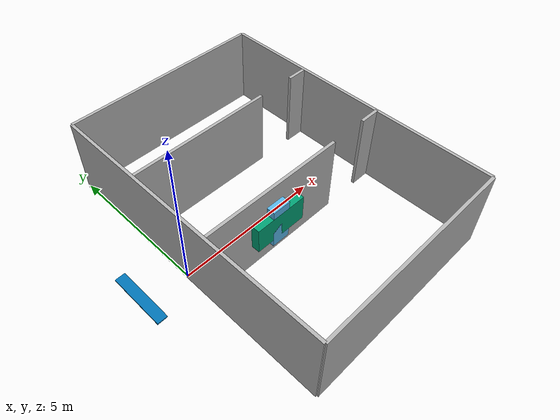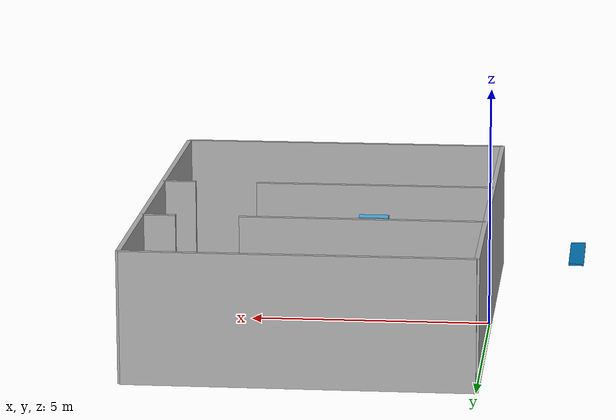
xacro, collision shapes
<?xml version="1.0"?>
<robot xmlns:xacro="http://www.ros.org/wiki/xacro" name="diag">

  <xacro:include filename="$(find lucrezio_gazebo_worlds)/urdf/common.xacro" />
  <xacro:include filename="$(find lucrezio_gazebo_worlds)/urdf/materials.urdf.xacro" />

  <!-- apartment -->
  <xacro:include filename="$(find lucrezio_gazebo_worlds)/urdf/diag/diag_walls.urdf.xacro" />

  <!-- kitchen -->
  <xacro:include filename="$(find lucrezio_gazebo_worlds)/urdf/diag/kitchen.urdf.xacro" />

  <!--Parameters-->
  <xacro:property name="dist_axis_x" value="1.969" />
  <xacro:property name="dist_axis_y" value="4.070" />

  <xacro:property name="size_total_x" value="8.0" />
  <xacro:property name="size_total_y" value="11.2" />

  <xacro:property name="size_a" value="10" />
  <xacro:property name="size_b" value="7" />
  <xacro:property name="size_c" value="5" />
  <xacro:property name="size_d" value="0.70" />

  <xacro:property name="wall_depth" value="0.1" />
  <xacro:property name="wall_height" value="2.7" />
  <xacro:property name="window_depth" value="0.15" />

  <xacro:property name="size_z_wall1" value="2.7" />
  <xacro:property name="size_z_wall2" value="2.7" />
  <xacro:property name="size_z_wall3" value="2.7" />

  <xacro:macro name="diag" params="name">

    <gazebo>
      <plugin name="environment_gazebo_ros_control" filename="libgazebo_ros_control.so">
        <robotNamespace>world</robotNamespace>
        <robotParam>/world_description</robotParam>
      </plugin>
    </gazebo>

    <link name="world"/>

    <xacro:diag_walls name="diag_walls">
    </xacro:diag_walls>

    <xacro:kitchen name="kitchen">
    </xacro:kitchen>

  </xacro:macro>

  <xacro:diag name="diag" />

</robot>

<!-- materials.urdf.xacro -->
<robot>

  <material name="DIAG/Blue">
    <color rgba="0.0 0.0 0.8 1.0"/>
  </material>

  <material name="DIAG/Green">
    <color rgba="0.0 0.8 0.0 1.0"/>
  </material>

  <material name="DIAG/Grey">
    <color rgba="0.7 0.7 0.7 1.0"/>
  </material>

  <material name="DIAG/Grey2">
    <color rgba="0.81 0.81 0.81 1.0"/>
  </material>

  <material name="DIAG/Red">
    <color rgba="0.8 0.0 0.0 1.0"/>
  </material>

  <material name="DIAG/White">
    <color rgba="1.0 1.0 1.0 1.0"/>
  </material>

  <material name="DIAG/Black">
    <color rgba="0.0 0.0 0.0 1.0"/>
  </material>

  <material name="DIAG/Transparent">
    <color rgba="0.81 0.81 0.81 0.0"/>
  </material>

  <material name="DIAG/LightBlue">
    <color rgba="0.624 0.698 0.858 1"/>
  </material>

</robot>

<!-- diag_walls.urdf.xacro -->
<robot xmlns:xacro="http://www.ros.org/wiki/xacro">

  <xacro:macro name="diag_walls" params="name">

  <!-- wall_00 -->
  <link name="wall_00">
    <xacro:box_inertial x="${wall_depth}" y="${size_a}" z="${wall_height}" mass="5.0">
      <origin xyz="0 0 0" rpy="0 0 0" />
    </xacro:box_inertial>
    <visual>
      <origin xyz="0 0 0" />
      <geometry>
        <box size="${wall_depth} ${size_a} ${wall_height}" />
      </geometry>
      <material name="DIAG/Grey"/>
    </visual>
    <collision>
      <origin xyz="0 0 0" />
      <geometry>
        <box size="${wall_depth} ${size_a} ${wall_height}" />
      </geometry>
    </collision>
  </link>

  <gazebo reference="wall_00">
    <material>wall_floor_05</material>
  </gazebo>

  <joint name="joint_wall_00" type="fixed">
    <origin xyz="0 0 ${wall_height/2}" rpy="0 0 0" />
    <parent link="world" />
    <child link="wall_00" />
  </joint>

  <!-- wall_01 -->
  <link name="wall_01">
    <xacro:box_inertial x="${wall_depth}" y="${size_b}" z="${wall_height}" mass="5.0">
      <origin xyz="0 0 0" rpy="0 0 0" />
    </xacro:box_inertial>
    <visual>
      <origin xyz="0 0 0" />
      <geometry>
        <box size="${wall_depth} ${size_b} ${wall_height}" />
      </geometry>
      <material name="DIAG/Grey"/>
    </visual>
    <collision>
      <origin xyz="0 0 0" />
      <geometry>
        <box size="${wall_depth} ${size_b} ${wall_height}" />
      </geometry>
    </collision>
  </link>

  <gazebo reference="wall_01">
    <material>wall_floor_04</material>
  </gazebo>

  <joint name="joint_wall_01" type="fixed">
    <origin xyz="${size_b/2} ${size_a/2} ${wall_height/2}" rpy="0 0 1.57" />
    <parent link="world" />
    <child link="wall_01" />
  </joint>

  <!-- wall_02 -->
  <link name="wall_02">
    <xacro:box_inertial x="${wall_depth}" y="${size_a}" z="${wall_height}" mass="5.0">
      <origin xyz="0 0 0" rpy="0 0 0" />
    </xacro:box_inertial>
    <visual>
      <origin xyz="0 0 0" />
      <geometry>
        <box size="${wall_depth} ${size_a} ${wall_height}" />
      </geometry>
      <material name="DIAG/Grey"/>
    </visual>
    <collision>
      <origin xyz="0 0 0" />
      <geometry>
        <box size="${wall_depth} ${size_a} ${wall_height}" />
      </geometry>
    </collision>
  </link>

  <gazebo reference="wall_02">
    <material>wall_floor_04</material>
  </gazebo>

  <joint name="joint_wall_02" type="fixed">
    <origin xyz="${size_b} 0 ${wall_height/2}" rpy="0 0 0" />
    <parent link="world" />
    <child link="wall_02" />
  </joint>

  <!-- wall_03 -->
  <link name="wall_03">
    <xacro:box_inertial x="${wall_depth}" y="${size_b}" z="${wall_height}" mass="5.0">
      <origin xyz="0 0 0" rpy="0 0 0" />
    </xacro:box_inertial>
    <visual>
      <origin xyz="0 0 0" />
      <geometry>
        <box size="${wall_depth} ${size_b} ${wall_height}" />
      </geometry>
      <material name="DIAG/Grey"/>
    </visual>
    <collision>
      <origin xyz="0 0 0" />
      <geometry>
        <box size="${wall_depth} ${size_b} ${wall_height}" />
      </geometry>
    </collision>
  </link>

  <gazebo reference="wall_03">
    <material>wall_floor_04</material>
  </gazebo>

  <joint name="joint_wall_03" type="fixed">
    <origin xyz="${size_b/2} ${-size_a/2} ${wall_height/2}" rpy="0 0 1.57" />
    <parent link="world" />
    <child link="wall_03" />
  </joint>

  <!-- wall_04 -->
  <link name="wall_04">
    <xacro:box_inertial x="${wall_depth}" y="${size_c}" z="${wall_height}" mass="5.0">
      <origin xyz="0 0 0" rpy="0 0 0" />
    </xacro:box_inertial>
    <visual>
      <origin xyz="0 0 0" />
      <geometry>
        <box size="${wall_depth} ${size_c} ${wall_height}" />
      </geometry>
      <material name="DIAG/Grey"/>
    </visual>
    <collision>
      <origin xyz="0 0 0" />
      <geometry>
        <box size="${wall_depth} ${size_c} ${wall_height}" />
      </geometry>
    </collision>
  </link>

  <gazebo reference="wall_04">
    <material>wall_floor_04</material>
  </gazebo>

  <joint name="joint_wall_04" type="fixed">
    <origin xyz="${size_c/2} ${-size_a/2+4} ${wall_height/2}" rpy="0 0 1.57" />
    <parent link="world" />
    <child link="wall_04" />
  </joint>

  <!-- wall_05 -->
  <link name="wall_05">
    <xacro:box_inertial x="${wall_depth}" y="${size_d}" z="${wall_height}" mass="5.0">
      <origin xyz="0 0 0" rpy="0 0 0" />
    </xacro:box_inertial>
    <visual>
      <origin xyz="0 0 0" />
      <geometry>
        <box size="${wall_depth} ${size_d} ${wall_height}" />
      </geometry>
      <material name="DIAG/Grey"/>
    </visual>
    <collision>
      <origin xyz="0 0 0" />
      <geometry>
        <box size="${wall_depth} ${size_d} ${wall_height}" />
      </geometry>
    </collision>
  </link>

  <gazebo reference="wall_05">
    <material>wall_floor_04</material>
  </gazebo>

  <joint name="joint_wall_05" type="fixed">
    <origin xyz="${size_b - size_d/2} ${-size_a/2+4} ${wall_height/2}" rpy="0 0 1.57" />
    <parent link="world" />
    <child link="wall_05" />
  </joint>

  <!-- wall_06 -->
  <link name="wall_06">
    <xacro:box_inertial x="${wall_depth}" y="${size_c}" z="${wall_height}" mass="5.0">
      <origin xyz="0 0 0" rpy="0 0 0" />
    </xacro:box_inertial>
    <visual>
      <origin xyz="0 0 0" />
      <geometry>
        <box size="${wall_depth} ${size_c} ${wall_height}" />
      </geometry>
      <material name="DIAG/Grey"/>
    </visual>
    <collision>
      <origin xyz="0 0 0" />
      <geometry>
        <box size="${wall_depth} ${size_c} ${wall_height}" />
      </geometry>
    </collision>
  </link>

  <gazebo reference="wall_06">
    <material>wall_floor_04</material>
  </gazebo>

  <joint name="joint_wall_06" type="fixed">
    <origin xyz="${size_c/2} ${-size_a/2+7} ${wall_height/2}" rpy="0 0 1.57" />
    <parent link="world" />
    <child link="wall_06" />
  </joint>

  <!-- wall_07 -->
  <link name="wall_07">
    <xacro:box_inertial x="${wall_depth}" y="${size_d}" z="${wall_height}" mass="5.0">
      <origin xyz="0 0 0" rpy="0 0 0" />
    </xacro:box_inertial>
    <visual>
      <origin xyz="0 0 0" />
      <geometry>
        <box size="${wall_depth} ${size_d} ${wall_height}" />
      </geometry>
      <material name="DIAG/Grey"/>
    </visual>
    <collision>
      <origin xyz="0 0 0" />
      <geometry>
        <box size="${wall_depth} ${size_d} ${wall_height}" />
      </geometry>
    </collision>
  </link>

  <gazebo reference="wall_07">
    <material>wall_floor_04</material>
  </gazebo>

  <joint name="joint_wall_07" type="fixed">
    <origin xyz="${size_b - size_d/2} ${-size_a/2+7} ${wall_height/2}" rpy="0 0 1.57" />
    <parent link="world" />
    <child link="wall_07" />
  </joint>

  </xacro:macro>

</robot>

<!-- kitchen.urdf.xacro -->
<robot xmlns:xacro="http://www.ros.org/wiki/xacro">

  <!-- kitchen -->
  <xacro:macro name="kitchen" params="name">

  <!-- kitchen_left -->
  <link name="kitchen_left">
    <xacro:box_inertial x="0.66" y="0.62" z="1.44" mass="5.0">
      <origin xyz="0 0 0" rpy="0 0 0" />
    </xacro:box_inertial>
    <visual>
      <origin xyz="0 0 0" />
      <geometry>
        <mesh filename="package://lucrezio_gazebo_worlds/Media/materials/textures/kitchen_right.dae" />
      </geometry>
    </visual>
    <collision>
      <origin xyz="0 0 0" />
      <geometry>
        <box size="0.66 0.62 1.44" />
      </geometry>
    </collision>
  </link>

  <joint name="joint_kitchen_left" type="floating">
    <origin xyz="${size_c/2} ${-size_a/2+4} ${wall_height/2}" rpy="0 0 1.57"/>
    <parent link="world" />
    <child link="kitchen_left" />
  </joint>

  <!-- kitchen_middle -->
  <link name="kitchen_middle">
    <xacro:box_inertial x="0.66" y="1.80" z="0.90" mass="5.0">
      <origin xyz="0 0 0" rpy="0 0 0" />
    </xacro:box_inertial>
    <visual>
      <origin xyz="0 0 0" />
      <geometry>
        <mesh filename="package://lucrezio_gazebo_worlds/Media/materials/textures/kitchen_middle.dae" />
      </geometry>
    </visual>
    <collision>
      <origin xyz="0 0 0" />
      <geometry>
        <box size="0.66 1.80 0.90" />
      </geometry>
    </collision>
  </link>

  <joint name="joint_kitchen_middle" type="floating">
    <origin xyz="${size_c/2} ${-size_a/2+4} ${wall_height/2}" rpy="0 0 1.57" />
    <parent link="world" />
    <child link="kitchen_middle" />
  </joint>

  <!-- kitchen_right -->
  <link name="kitchen_right">
    <xacro:box_inertial x="0.66" y="0.62" z="1.44" mass="5.0">
      <origin xyz="0 0 0" rpy="0 0 0" />
    </xacro:box_inertial>
    <visual>
      <origin xyz="0 0 0" />
      <geometry>
        <mesh filename="package://lucrezio_gazebo_worlds/Media/materials/textures/kitchen_left.dae" />
      </geometry>
    </visual>
    <collision>
      <origin xyz="0 0 0" />
      <geometry>
        <box size="0.66 0.62 1.44" />
      </geometry>
    </collision>
  </link>

  <joint name="joint_kitchen_right" type="floating">
    <origin xyz="${size_c/2} ${-size_a/2+4} ${wall_height/2}" rpy="0 0 1.57" />
    <parent link="world" />
    <child link="kitchen_right" />
  </joint>

  <link name="planck_link">
    <xacro:box_inertial x="0.31" y="1.79" z="0.04" mass="5.0">
      <origin xyz="0 0.118 0.02" rpy="0 0 0" />
    </xacro:box_inertial>
    <visual>
      <origin xyz="0 0 0.0" rpy="0 0 0" />
      <geometry>
        <mesh filename="package://lucrezio_gazebo_worlds/Media/models/kitchen_plank.dae"/>
      </geometry>
    </visual>
    <collision>
      <origin xyz="0 0.118 0.02" />
      <geometry>
        <box size="0.31 1.79 0.04" />
      </geometry>
    </collision>
  </link>

  <joint name="joint_planck_link" type="floating">
    <origin xyz="-1.8 -0.64 1.40" rpy="0 0 0" />
    <parent link="world" />
    <child link="planck_link" />
  </joint>

  </xacro:macro>

</robot>
